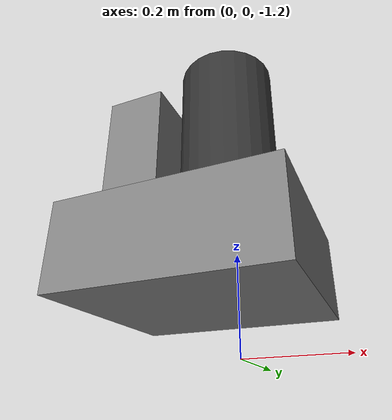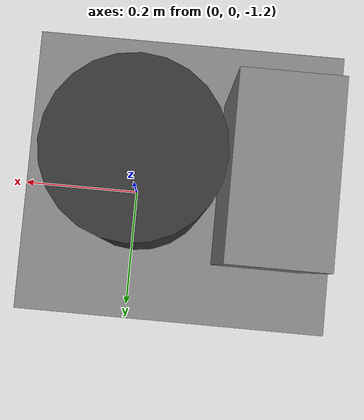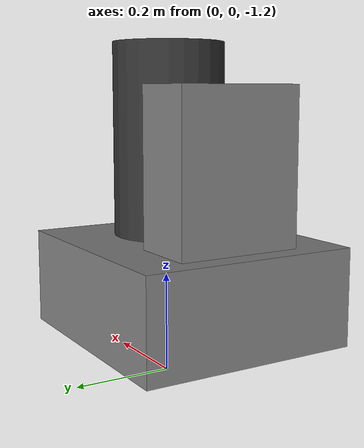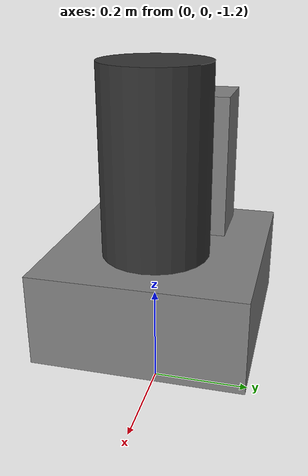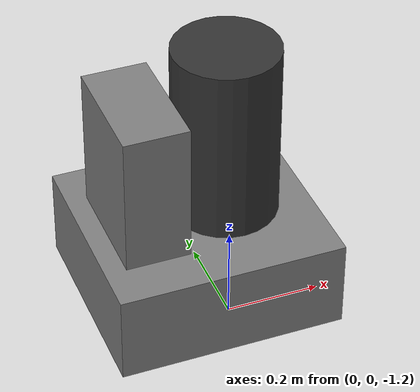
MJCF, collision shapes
<mujoco model="rethink_mount">
    <compiler angle="radian" meshdir="meshes" autolimits="true" />
    <asset>
        <!-- Mesh scaled visually -->
        <mesh name="pedestal" file="rethink_mount/pedestal.stl" scale="0.6 0.6 0.6" />
    </asset>

    <worldbody>
        <!-- base -->
        <body name="base_r" pos="0 0 -0.5532">

            <!-- controller_box -->
            <body name="controller_box" pos="0 0 0">
                <inertial diaginertia="1.71363 1.27988 0.809981" mass="46.64"
                          pos="-0.195 0 -0.228" />
                <geom pos="-0.195 0 -0.228" size="0.066 0.12 0.159"
                      type="box" name="controller_box_col" group="3" />
            </body>

            <!-- pedestal_feet -->
            <body name="pedestal_feet" pos="0 0 0">
                <inertial diaginertia="8.16095 9.59375 15.0785" mass="167.09"
                          pos="-0.0735 0 -0.4548" />
                <geom pos="-0.0735 0 -0.4548" size="0.231 0.21 0.093"
                      type="box" name="pedestal_feet_col" group="3" />
            </body>

            <!-- torso -->
            <body name="torso" pos="0 0 0">
                <inertial diaginertia="1e-08 1e-08 1e-08" mass="0.0001" pos="0 0 0" />
                <geom conaffinity="0" contype="0" group="1" pos="0 0 -0.03"
                      size="0.03 0.03 0.03" type="box" name="torso_vis"
                      rgba="0.2 0.2 0.2 1" />
            </body>

            <!-- pedestal -->
            <body name="pedestal" pos="0 0 0">
                <inertial diaginertia="6.0869 5.81635 4.20915" mass="60.864"
                          pos="0 0 0"
                          quat="0.659267 -0.259505 -0.260945 0.655692" />
                <geom conaffinity="0" contype="0" group="1"
                      mesh="pedestal" type="mesh" name="pedestal_vis"
                      rgba="0.2 0.2 0.2 1" />
                <geom pos="-0.012 0 -0.174"
                      rgba="0.2 0.2 0.2 1" size="0.108 0.186"
                      type="cylinder" name="pedestal_col" group="3" />
            </body>

        </body>
    </worldbody>
</mujoco>
